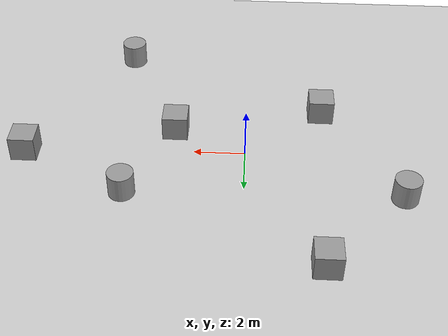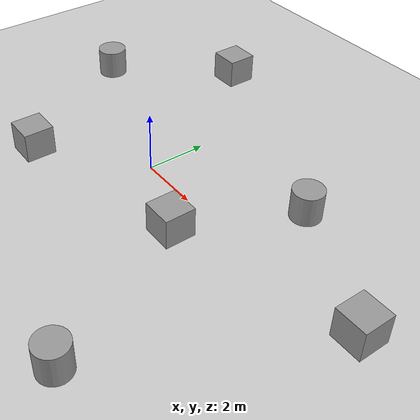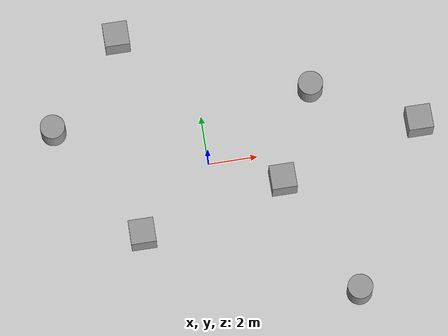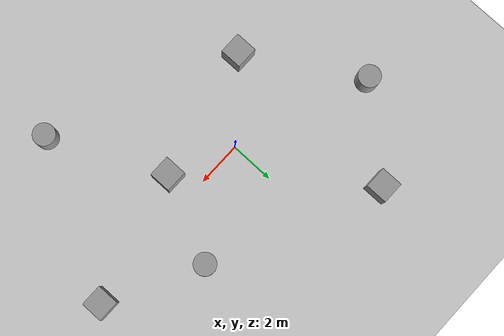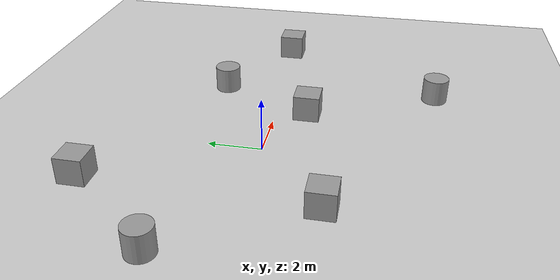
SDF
<sdf version="1.6">
 <world name="default">
  <light name="sun" type="directional">
   <pose>0 0 10 0 -0 0</pose>
   <diffuse>0.8 0.8 0.8 1</diffuse>
   <specular>0.1 0.1 0.1 1</specular>
   <attenuation>
    <range>1000</range>
    <constant>0.9</constant>
    <linear>0.01</linear>
    <quadratic>0.001</quadratic>
   </attenuation>
   <direction>-0.5 0.5 -1</direction>
  </light>
  <model name="ground_plane">
   <static>1</static>
   <link name="link">
    <collision name="collision">
     <geometry><plane><normal>0 0 1</normal><size>100 100</size></plane></geometry>
     <surface><friction><ode><mu>100</mu><mu2>50</mu2></ode></friction></surface>
    </collision>
    <visual name="visual">
     <cast_shadows>0</cast_shadows>
     <geometry><plane><normal>0 0 1</normal><size>100 100</size></plane></geometry>
     <material>
      <script><uri>file://media/materials/scripts/gazebo.material</uri><name>Gazebo/Grey</name></script>
     </material>
    </visual>
   </link>
  </model>
  <physics name="default_physics" default="0" type="ode">
   <max_step_size>0.01</max_step_size>
   <real_time_factor>1</real_time_factor>
   <real_time_update_rate>100</real_time_update_rate>
  </physics>
  <gravity>0 0 -9.8</gravity>
  <magnetic_field>6e-06 2.3e-05 -4.2e-05</magnetic_field>
  <atmosphere type="adiabatic"/>
  <scene><ambient>0.4 0.4 0.4 1</ambient><background>0.7 0.7 0.7 1</background><shadows>1</shadows></scene>
  <spherical_coordinates>
   <surface_model>EARTH_WGS84</surface_model>
   <latitude_deg>0</latitude_deg>
   <longitude_deg>0</longitude_deg>
   <elevation>0</elevation>
   <heading_deg>0</heading_deg>
  </spherical_coordinates>
  <model name="unit_box_0">
   <pose>2.81765 -1.21927 0.49967 0.00066 -0 0</pose>
   <link name="link">
    <inertial>
     <mass>1</mass>
     <inertia>
      <ixx>0.166667</ixx>
      <ixy>0</ixy>
      <ixz>0</ixz>
      <iyy>0.166667</iyy>
      <iyz>0</iyz>
      <izz>0.166667</izz>
     </inertia>
    </inertial>
    <collision name="collision"><geometry><box><size>1 1 1</size></box></geometry></collision>
    <visual name="visual">
     <geometry><box><size>1 1 1</size></box></geometry>
     <material>
      <script><name>Gazebo/Grey</name><uri>file://media/materials/scripts/gazebo.material</uri></script>
     </material>
    </visual>
   </link>
  </model>
  <model name="unit_box_1">
   <pose>-3.03466 -2.57824 0.49907 -0.0001 0 0</pose>
   <link name="link">
    <inertial>
     <mass>1</mass>
     <inertia>
      <ixx>0.166667</ixx>
      <ixy>0</ixy>
      <ixz>0</ixz>
      <iyy>0.166667</iyy>
      <iyz>0</iyz>
      <izz>0.166667</izz>
     </inertia>
    </inertial>
    <collision name="collision"><geometry><box><size>1 1 1</size></box></geometry></collision>
    <visual name="visual">
     <geometry><box><size>1 1 1</size></box></geometry>
     <material>
      <script><name>Gazebo/Grey</name><uri>file://media/materials/scripts/gazebo.material</uri></script>
     </material>
    </visual>
   </link>
  </model>
  <model name="unit_box_2">
   <pose>-2.87756 5.71381 0.49967 0.00066 -0 0</pose>
   <link name="link">
    <inertial>
     <mass>1</mass>
     <inertia>
      <ixx>0.166667</ixx>
      <ixy>0</ixy>
      <ixz>0</ixz>
      <iyy>0.166667</iyy>
      <iyz>0</iyz>
      <izz>0.166667</izz>
     </inertia>
    </inertial>
    <collision name="collision"><geometry><box><size>1 1 1</size></box></geometry></collision>
    <visual name="visual">
     <geometry><box><size>1 1 1</size></box></geometry>
     <material>
      <script><name>Gazebo/Grey</name><uri>file://media/materials/scripts/gazebo.material</uri></script>
     </material>
    </visual>
   </link>
  </model>
  <model name="unit_box_3">
   <pose>8.58957 0.355483 0.49907 -0.0001 0 0</pose>
   <link name="link">
    <inertial>
     <mass>1</mass>
     <inertia>
      <ixx>0.166667</ixx>
      <ixy>0</ixy>
      <ixz>0</ixz>
      <iyy>0.166667</iyy>
      <iyz>0</iyz>
      <izz>0.166667</izz>
     </inertia>
    </inertial>
    <collision name="collision"><geometry><box><size>1 1 1</size></box></geometry></collision>
    <visual name="visual">
     <geometry><box><size>1 1 1</size></box></geometry>
     <material>
      <script><name>Gazebo/Grey</name><uri>file://media/materials/scripts/gazebo.material</uri></script>
     </material>
    </visual>
   </link>
  </model>
  <model name="unit_cylinder_0">
   <pose>4.52547 2.44244 0.499789 0.000422 0.000422 -3e-06</pose>
   <link name="link">
    <inertial>
     <mass>1</mass>
     <inertia><ixx>0.145833</ixx><ixy>0</ixy><ixz>0</ixz><iyy>0.145833</iyy><iyz>0</iyz><izz>0.125</izz></inertia>
    </inertial>
    <collision name="collision">
     <geometry><cylinder><radius>0.5</radius><length>1</length></cylinder></geometry>
    </collision>
    <visual name="visual">
     <geometry><cylinder><radius>0.5</radius><length>1</length></cylinder></geometry>
     <material>
      <script><name>Gazebo/Grey</name><uri>file://media/materials/scripts/gazebo.material</uri></script>
     </material>
    </visual>
   </link>
  </model>
  <model name="unit_cylinder_1">
   <pose>5.09009 -6.14039 0.499824 -0.000249 -0.000249 -2e-06</pose>
   <link name="link">
    <inertial>
     <mass>1</mass>
     <inertia><ixx>0.145833</ixx><ixy>0</ixy><ixz>0</ixz><iyy>0.145833</iyy><iyz>0</iyz><izz>0.125</izz></inertia>
    </inertial>
    <collision name="collision">
     <geometry><cylinder><radius>0.5</radius><length>1</length></cylinder></geometry>
    </collision>
    <visual name="visual">
     <geometry><cylinder><radius>0.5</radius><length>1</length></cylinder></geometry>
     <material>
      <script><name>Gazebo/Grey</name><uri>file://media/materials/scripts/gazebo.material</uri></script>
     </material>
    </visual>
   </link>
  </model>
  <model name="unit_cylinder_2">
   <pose>-5.93601 2.2288 0.499096 4.8e-05 4.8e-05 -1e-06</pose>
   <link name="link">
    <inertial>
     <mass>1</mass>
     <inertia><ixx>0.145833</ixx><ixy>0</ixy><ixz>0</ixz><iyy>0.145833</iyy><iyz>0</iyz><izz>0.125</izz></inertia>
    </inertial>
    <collision name="collision">
     <geometry><cylinder><radius>0.5</radius><length>1</length></cylinder></geometry>
    </collision>
    <visual name="visual">
     <geometry><cylinder><radius>0.5</radius><length>1</length></cylinder></geometry>
     <material>
      <script><name>Gazebo/Grey</name><uri>file://media/materials/scripts/gazebo.material</uri></script>
     </material>
    </visual>
   </link>
  </model>
 </world>
</sdf>
